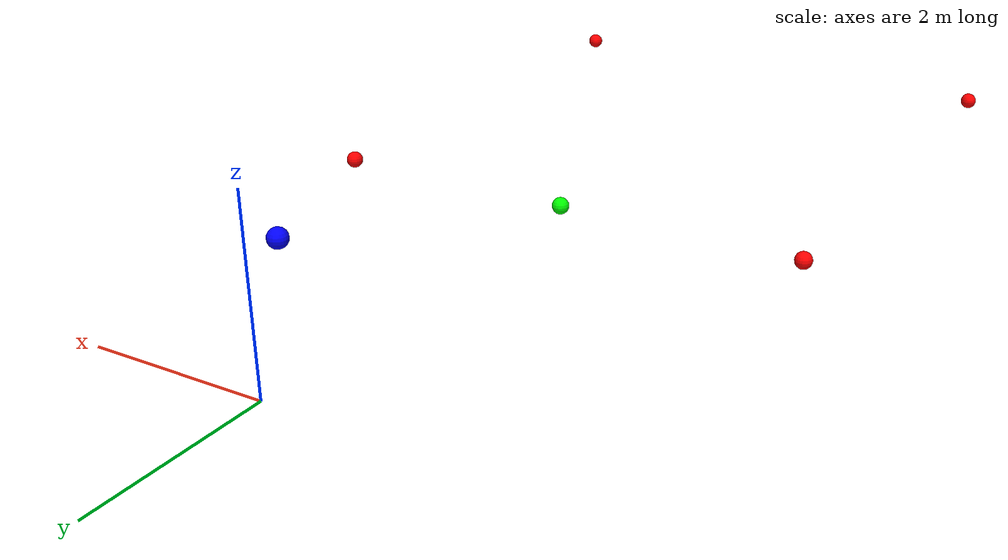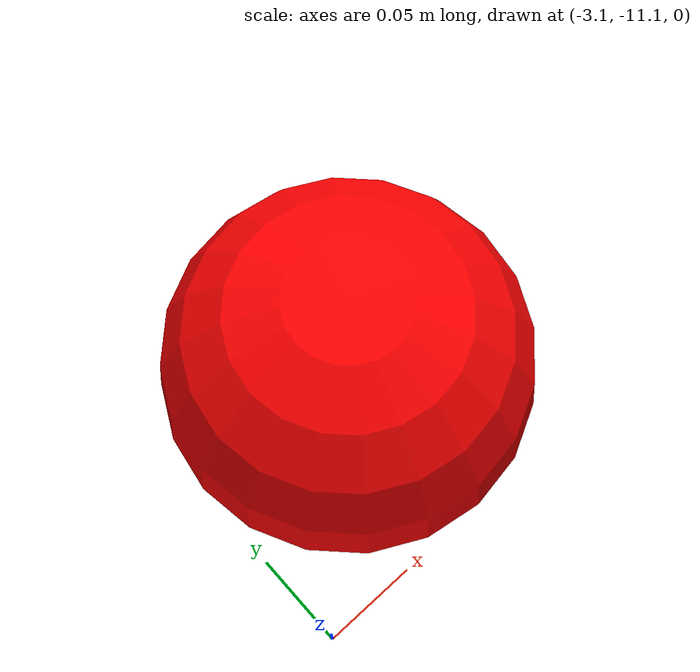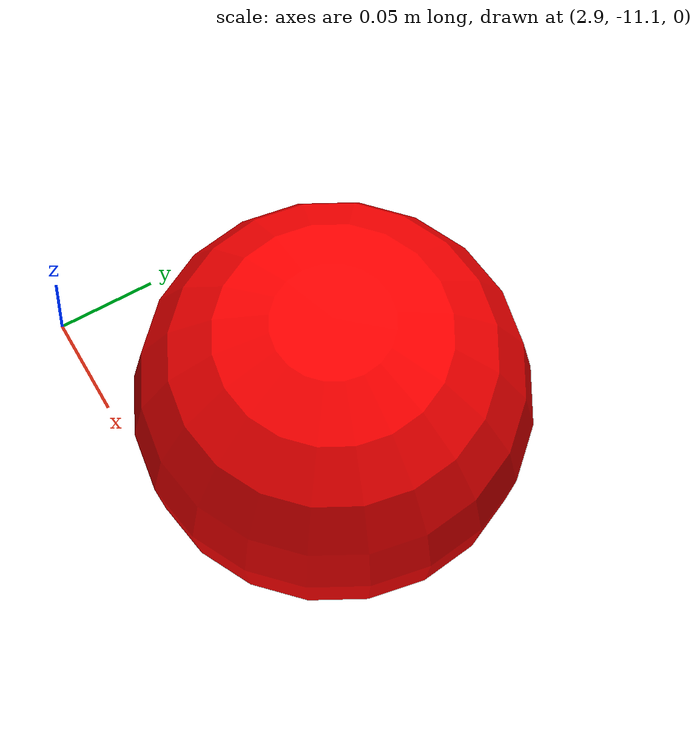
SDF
<sdf version="1.8">
 <world name="test_world">
  <scene><ambient>1.0 1.0 1.0</ambient><background>0.8 0.8 0.8</background></scene>
  <plugin filename="ignition-gazebo-physics-system" name="ignition::gazebo::systems::Physics"/>
  <plugin filename="ignition-gazebo-sensors-system" name="ignition::gazebo::systems::Sensors">
   <render_engine>ogre2</render_engine>
  </plugin>
  <plugin filename="ignition-gazebo-user-commands-system" name="ignition::gazebo::systems::UserCommands"/>
  <plugin filename="ignition-gazebo-scene-broadcaster-system" name="ignition::gazebo::systems::SceneBroadcaster"/>
  <model name="ground_plane">
   <static>true</static>
   <link name="link">
    <collision name="collision"><geometry><plane><normal>0 0 1</normal></plane></geometry></collision>
   </link>
  </model>
  <model name="marker_camera">
   <static>true</static>
   <pose>0 -0.4 1.4 0 0 0</pose>
   <link name="link">
    <visual name="visual">
     <geometry><sphere><radius>0.1</radius></sphere></geometry>
     <material><ambient>0 0 1 1</ambient><diffuse>0 0 1 1</diffuse><specular>0 0 1 1</specular></material>
    </visual>
   </link>
  </model>
  <model name="marker_1">
   <static>true</static>
   <pose>0 -5 0 0 0 0</pose>
   <link name="link">
    <visual name="visual">
     <geometry><sphere><radius>0.1</radius></sphere></geometry>
     <material><ambient>0 1 0 1</ambient><diffuse>0 1 0 1</diffuse><specular>0 1 0 1</specular></material>
    </visual>
   </link>
  </model>
  <model name="marker_2">
   <static>true</static>
   <pose>3 -5 0 0 0 0</pose>
   <link name="link">
    <visual name="visual">
     <geometry><sphere><radius>0.1</radius></sphere></geometry>
     <material><ambient>1 0 0 1</ambient><diffuse>1 0 0 1</diffuse><specular>1 0 0 1</specular></material>
    </visual>
   </link>
  </model>
  <model name="marker_3">
   <static>true</static>
   <pose>-3 -5 0 0 0 0</pose>
   <link name="link">
    <visual name="visual">
     <geometry><sphere><radius>0.1</radius></sphere></geometry>
     <material><ambient>1 0 0 1</ambient><diffuse>1 0 0 1</diffuse><specular>1 0 0 1</specular></material>
    </visual>
   </link>
  </model>
  <model name="marker_4">
   <static>true</static>
   <pose>3 -11 0 0 0 0</pose>
   <link name="link">
    <visual name="visual">
     <geometry><sphere><radius>0.1</radius></sphere></geometry>
     <material><ambient>1 0 0 1</ambient><diffuse>1 0 0 1</diffuse><specular>1 0 0 1</specular></material>
    </visual>
   </link>
  </model>
  <model name="marker_5">
   <static>true</static>
   <pose>-3 -11 0 0 0 0</pose>
   <link name="link">
    <visual name="visual">
     <geometry><sphere><radius>0.1</radius></sphere></geometry>
     <material><ambient>1 0 0 1</ambient><diffuse>1 0 0 1</diffuse><specular>1 0 0 1</specular></material>
    </visual>
   </link>
  </model>
 </world>
</sdf>
